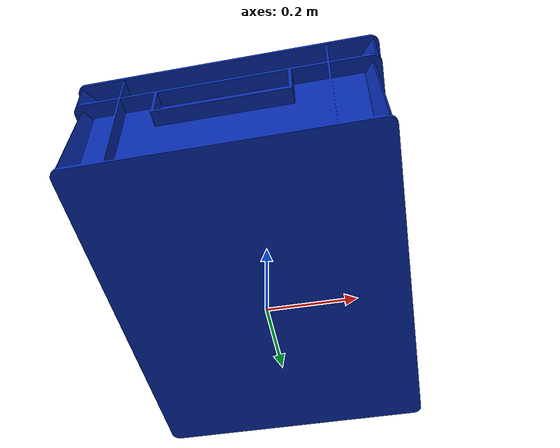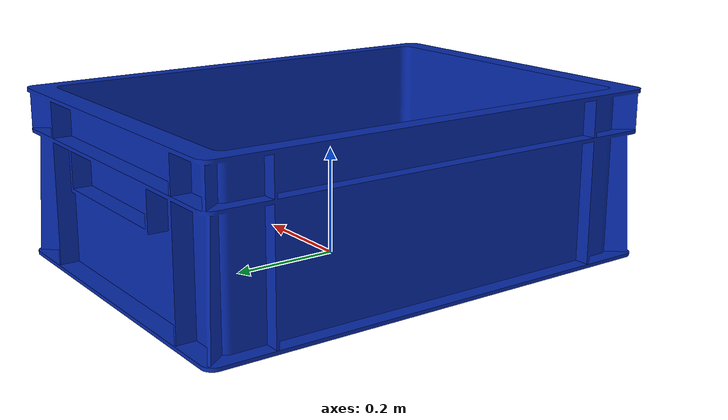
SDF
<?xml version="1.0" ?>
<sdf version='1.4'>
  <model name="dropoff_box">
      <static>1</static>
      <link name='link'>
        <inertial>
          <mass>1.0</mass>
          <inertia>
            <ixx>0.0755262496948</ixx>
            <ixy>0.000000</ixy>
            <ixz>0.000000</ixz>
            <iyy>0.0441608153271</iyy>
            <iyz>0.000000</iyz>
            <izz>0.1033038684</izz>
          </inertia>
        </inertial>
        <collision name='collision'>
          <geometry>
            <mesh>
              <uri>model://dropoff_box/meshes/box_v1.stl</uri>
              <scale>1 1 1</scale>
            </mesh>
          </geometry>
          <surface>
            <friction>
              <ode>
                <mu>30.0</mu>
                <mu2>30.0</mu2>
              </ode>
            </friction>
            <contact>
              <ode>
                <soft_cfm>0</soft_cfm>
    	          <soft_erp>0.2</soft_erp>
    	          <kp>1e+13</kp>
    	          <kd>1</kd>
    	          <max_vel>0.01</max_vel>
    	          <min_depth>0</min_depth>
              </ode>
            </contact>
          </surface>
        </collision>
        <visual name='visual'>
          <geometry>
            <mesh>
              <uri>model://dropoff_box/meshes/box_v1.dae</uri>
              <scale>1 1 1</scale>
            </mesh>
          </geometry>
        </visual>
        <velocity_decay>
          <linear>0.000000</linear>
          <angular>0.000000</angular>
        </velocity_decay>
        <self_collide>0</self_collide>
        <kinematic>0</kinematic>
        <gravity>1</gravity>
      </link>
  </model>
</sdf>
